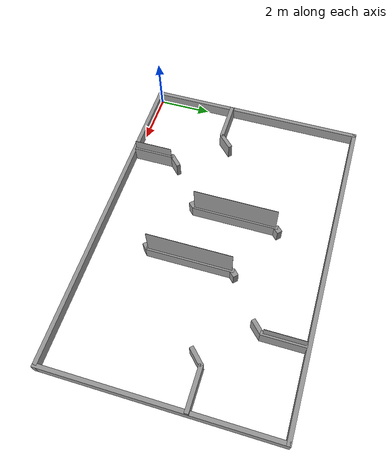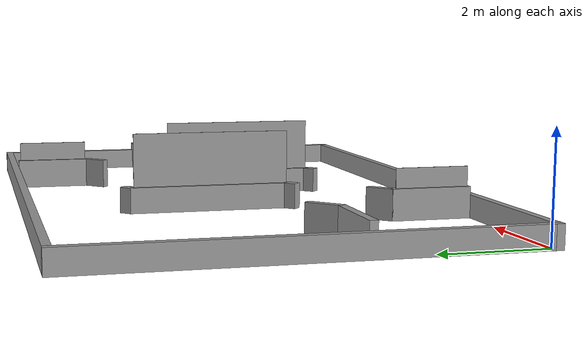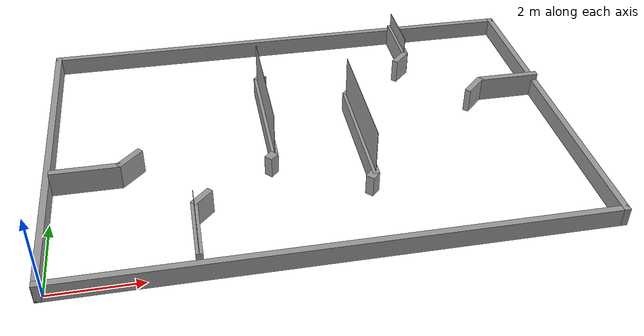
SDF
<?xml version='1.0'?>
<sdf version='1.7'>
  <model name='Robomaster_Arena'>
    <pose>5.925 4 0 0 -0 0</pose>
    <link name='Wall_0'>
      <collision name='Wall_0_Collision'>
        <geometry>
          <box>
            <size>12.1509 0.15 0.44</size>
          </box>
        </geometry>
        <pose>0 0 0.22 0 -0 0</pose>
      </collision>
      <visual name='Wall_0_Visual'>
        <pose>0 0 0.22 0 -0 0</pose>
        <geometry>
          <box>
            <size>12.1509 0.15 0.44</size>
          </box>
        </geometry>
        <material>
          <script>
            <uri>file://media/materials/scripts/gazebo.material</uri>
            <name>Gazebo/Grey</name>
          </script>
          <ambient>0 0 0 1</ambient>
        </material>
        <meta>
          <layer>0</layer>
        </meta>
      </visual>
      <pose>-0 -4.075 0 0 -0 0</pose>
    </link>
    <link name='Wall_12'>
      <collision name='Wall_12_Collision'>
        <geometry>
          <box>
            <size>1.546 0.15 0.6</size>
          </box>
        </geometry>
        <pose>0 0 0.3 0 -0 0</pose>
      </collision>
      <visual name='Wall_12_Visual'>
        <pose>0 0 0.3 0 -0 0</pose>
        <geometry>
          <box>
            <size>1.546 0.15 0.6</size>
          </box>
        </geometry>
        <material>
          <script>
            <uri>file://media/materials/scripts/gazebo.material</uri>
            <name>Gazebo/Grey</name>
          </script>
          <ambient>1 1 1 1</ambient>
        </material>
        <meta>
          <layer>0</layer>
        </meta>
      </visual>
      <pose>-2.878 -3.227 0 0 -0 1.5708</pose>
    </link>
    <link name='Wall_14'>
      <collision name='Wall_14_Collision'>
        <geometry>
          <box>
            <size>0.696242 0.15 0.6</size>
          </box>
        </geometry>
        <pose>0 0 0.3 0 -0 0</pose>
      </collision>
      <visual name='Wall_14_Visual'>
        <pose>0 0 0.3 0 -0 0</pose>
        <geometry>
          <box>
            <size>0.696242 0.15 0.6</size>
          </box>
        </geometry>
        <material>
          <script>
            <uri>file://media/materials/scripts/gazebo.material</uri>
            <name>Gazebo/Grey</name>
          </script>
          <ambient>1 1 1 1</ambient>
        </material>
        <meta>
          <layer>0</layer>
        </meta>
      </visual>
      <pose>-4.1855 -0.727 0 0 -0 0.784105</pose>
    </link>
    <link name='Wall_16'>
      <collision name='Wall_16_Collision'>
        <geometry>
          <box>
            <size>0.547 0.15 0.6</size>
          </box>
        </geometry>
        <pose>0 0 0.3 0 -0 0</pose>
      </collision>
      <visual name='Wall_16_Visual'>
        <pose>0 0 0.3 0 -0 0</pose>
        <geometry>
          <box>
            <size>0.547 0.15 0.6</size>
          </box>
        </geometry>
        <material>
          <script>
            <uri>file://media/materials/scripts/gazebo.material</uri>
            <name>Gazebo/Grey</name>
          </script>
          <ambient>1 1 1 1</ambient>
        </material>
        <meta>
          <layer>0</layer>
        </meta>
      </visual>
      <pose>-2.70728 -2.32076 0 0 -0 0.785398</pose>
    </link>
    <link name='Wall_18'>
      <collision name='Wall_18_Collision'>
        <geometry>
          <box>
            <size>1.425 0.01 0.978</size>
          </box>
        </geometry>
        <pose>0 0 0.489 0 -0 0</pose>
      </collision>
      <visual name='Wall_18_Visual'>
        <pose>0 0 0.489 0 -0 0</pose>
        <geometry>
          <box>
            <size>1.425 0.01 0.978</size>
          </box>
        </geometry>
        <material>
          <script>
            <uri>file://media/materials/scripts/gazebo.material</uri>
            <name>Gazebo/Grey</name>
          </script>
          <ambient>0 0 0 1</ambient>
        </material>
        <meta>
          <layer>0</layer>
        </meta>
      </visual>
      <pose>-2.87845 -3.25142 0 0 -0 1.5708</pose>
    </link>
    <link name='Wall_2'>
      <collision name='Wall_2_Collision'>
        <geometry>
          <box>
            <size>8.3 0.15 0.44</size>
          </box>
        </geometry>
        <pose>0 0 0.22 0 -0 0</pose>
      </collision>
      <visual name='Wall_2_Visual'>
        <pose>0 0 0.22 0 -0 0</pose>
        <geometry>
          <box>
            <size>8.3 0.15 0.44</size>
          </box>
        </geometry>
        <material>
          <script>
            <uri>file://media/materials/scripts/gazebo.material</uri>
            <name>Gazebo/Grey</name>
          </script>
          <ambient>0 0 0 1</ambient>
        </material>
        <meta>
          <layer>0</layer>
        </meta>
      </visual>
      <pose>-6 0 0 0 -0 1.5708</pose>
    </link>
    <link name='Wall_20'>
      <collision name='Wall_20_Collision'>
        <geometry>
          <box>
            <size>3.187 0.15 0.5</size>
          </box>
        </geometry>
        <pose>0 0 0.25 0 -0 0</pose>
      </collision>
      <visual name='Wall_20_Visual'>
        <pose>0 0 0.25 0 -0 0</pose>
        <geometry>
          <box>
            <size>3.187 0.15 0.5</size>
          </box>
        </geometry>
        <material>
          <script>
            <uri>file://media/materials/scripts/gazebo.material</uri>
            <name>Gazebo/Grey</name>
          </script>
          <ambient>1 1 1 1</ambient>
        </material>
        <meta>
          <layer>0</layer>
        </meta>
      </visual>
      <pose>-0.969001 0.5245 0 0 -0 1.5708</pose>
    </link>
    <link name='Wall_22'>
      <collision name='Wall_22_Collision'>
        <geometry>
          <box>
            <size>3.048 0.01 1.529</size>
          </box>
        </geometry>
        <pose>0 0 0.7645 0 -0 0</pose>
      </collision>
      <visual name='Wall_22_Visual'>
        <pose>0 0 0.7645 0 -0 0</pose>
        <geometry>
          <box>
            <size>3.048 0.01 1.529</size>
          </box>
        </geometry>
        <material>
          <script>
            <uri>file://media/materials/scripts/gazebo.material</uri>
            <name>Gazebo/Grey</name>
          </script>
          <ambient>0 0 0 1</ambient>
        </material>
        <meta>
          <layer>0</layer>
        </meta>
      </visual>
      <pose>-0.964 0.521 0 0 -0 -1.5708</pose>
    </link>
    <link name='Wall_24'>
      <collision name='Wall_24_Collision'>
        <geometry>
          <box>
            <size>3.187 0.15 0.5</size>
          </box>
        </geometry>
        <pose>0 0 0.25 0 -0 0</pose>
      </collision>
      <visual name='Wall_24_Visual'>
        <pose>0 0 0.25 0 -0 0</pose>
        <geometry>
          <box>
            <size>3.187 0.15 0.5</size>
          </box>
        </geometry>
        <material>
          <script>
            <uri>file://media/materials/scripts/gazebo.material</uri>
            <name>Gazebo/Grey</name>
          </script>
          <ambient>1 1 1 1</ambient>
        </material>
        <meta>
          <layer>0</layer>
        </meta>
      </visual>
      <pose>1.119 -0.5245 0 0 -0 -1.5708</pose>
    </link>
    <link name='Wall_26'>
      <collision name='Wall_26_Collision'>
        <geometry>
          <box>
            <size>3.048 0.01 1.529</size>
          </box>
        </geometry>
        <pose>0 0 0.7645 0 -0 0</pose>
      </collision>
      <visual name='Wall_26_Visual'>
        <pose>0 0 0.7645 0 -0 0</pose>
        <geometry>
          <box>
            <size>3.048 0.01 1.529</size>
          </box>
        </geometry>
        <material>
          <script>
            <uri>file://media/materials/scripts/gazebo.material</uri>
            <name>Gazebo/Grey</name>
          </script>
          <ambient>0 0 0 1</ambient>
        </material>
        <meta>
          <layer>0</layer>
        </meta>
      </visual>
      <pose>1.121 -0.522 0 0 -0 -1.5708</pose>
    </link>
    <link name='Wall_29'>
      <collision name='Wall_29_Collision'>
        <geometry>
          <box>
            <size>0.25 0.2 0.5</size>
          </box>
        </geometry>
        <pose>0 0 0.25 0 -0 0</pose>
      </collision>
      <visual name='Wall_29_Visual'>
        <pose>0 0 0.25 0 -0 0</pose>
        <geometry>
          <box>
            <size>0.25 0.2 0.5</size>
          </box>
        </geometry>
        <material>
          <script>
            <uri>file://media/materials/scripts/gazebo.material</uri>
            <name>Gazebo/Grey</name>
          </script>
          <ambient>1 1 1 1</ambient>
        </material>
        <meta>
          <layer>0</layer>
        </meta>
      </visual>
      <pose>-1.05411 -1.08735 0 0 -0 -2.35619</pose>
    </link>
    <link name='Wall_31'>
      <collision name='Wall_31_Collision'>
        <geometry>
          <box>
            <size>0.25 0.2 0.5</size>
          </box>
        </geometry>
        <pose>0 0 0.25 0 -0 0</pose>
      </collision>
      <visual name='Wall_31_Visual'>
        <pose>0 0 0.25 0 -0 0</pose>
        <geometry>
          <box>
            <size>0.25 0.2 0.5</size>
          </box>
        </geometry>
        <material>
          <script>
            <uri>file://media/materials/scripts/gazebo.material</uri>
            <name>Gazebo/Grey</name>
          </script>
          <ambient>1 1 1 1</ambient>
        </material>
        <meta>
          <layer>0</layer>
        </meta>
      </visual>
      <pose>-0.885541 2.1347 0 0 -0 0.785398</pose>
    </link>
    <link name='Wall_33'>
      <collision name='Wall_33_Collision'>
        <geometry>
          <box>
            <size>0.25 0.2 0.5</size>
          </box>
        </geometry>
        <pose>0 0 0.25 0 -0 0</pose>
      </collision>
      <visual name='Wall_33_Visual'>
        <pose>0 0 0.25 0 -0 0</pose>
        <geometry>
          <box>
            <size>0.25 0.2 0.5</size>
          </box>
        </geometry>
        <material>
          <script>
            <uri>file://media/materials/scripts/gazebo.material</uri>
            <name>Gazebo/Grey</name>
          </script>
          <ambient>1 1 1 1</ambient>
        </material>
        <meta>
          <layer>0</layer>
        </meta>
      </visual>
      <pose>1.20267 1.08644 0 0 -0 0.785398</pose>
    </link>
    <link name='Wall_35'>
      <collision name='Wall_35_Collision'>
        <geometry>
          <box>
            <size>0.25 0.2 0.5</size>
          </box>
        </geometry>
        <pose>0 0 0.25 0 -0 0</pose>
      </collision>
      <visual name='Wall_35_Visual'>
        <pose>0 0 0.25 0 -0 0</pose>
        <geometry>
          <box>
            <size>0.25 0.2 0.5</size>
          </box>
        </geometry>
        <material>
          <script>
            <uri>file://media/materials/scripts/gazebo.material</uri>
            <name>Gazebo/Grey</name>
          </script>
          <ambient>1 1 1 1</ambient>
        </material>
        <meta>
          <layer>0</layer>
        </meta>
      </visual>
      <pose>1.03487 -2.1358 0 0 -0 0.785398</pose>
    </link>
    <link name='Wall_37'>
      <collision name='Wall_37_Collision'>
        <geometry>
          <box>
            <size>1.546 0.15 0.6</size>
          </box>
        </geometry>
        <pose>0 0 0.3 0 -0 0</pose>
      </collision>
      <visual name='Wall_37_Visual'>
        <pose>0 0 0.3 0 -0 0</pose>
        <geometry>
          <box>
            <size>1.546 0.15 0.6</size>
          </box>
        </geometry>
        <material>
          <script>
            <uri>file://media/materials/scripts/gazebo.material</uri>
            <name>Gazebo/Grey</name>
          </script>
          <ambient>1 1 1 1</ambient>
        </material>
        <meta>
          <layer>0</layer>
        </meta>
      </visual>
      <pose>5.302 0.95 0 0 -0 3.14159</pose>
    </link>
    <link name='Wall_39'>
      <collision name='Wall_39_Collision'>
        <geometry>
          <box>
            <size>0.696594 0.15 0.6</size>
          </box>
        </geometry>
        <pose>0 0 0.3 0 -0 0</pose>
      </collision>
      <visual name='Wall_39_Visual'>
        <pose>0 0 0.3 0 -0 0</pose>
        <geometry>
          <box>
            <size>0.696594 0.15 0.6</size>
          </box>
        </geometry>
        <material>
          <script>
            <uri>file://media/materials/scripts/gazebo.material</uri>
            <name>Gazebo/Grey</name>
          </script>
          <ambient>1 1 1 1</ambient>
        </material>
        <meta>
          <layer>0</layer>
        </meta>
      </visual>
      <pose>4.3355 0.727 0 0 -0 -2.35749</pose>
    </link>
    <link name='Wall_41'>
      <collision name='Wall_41_Collision'>
        <geometry>
          <box>
            <size>1.546 0.15 0.6</size>
          </box>
        </geometry>
        <pose>0 0 0.3 0 -0 0</pose>
      </collision>
      <visual name='Wall_41_Visual'>
        <pose>0 0 0.3 0 -0 0</pose>
        <geometry>
          <box>
            <size>1.546 0.15 0.6</size>
          </box>
        </geometry>
        <material>
          <script>
            <uri>file://media/materials/scripts/gazebo.material</uri>
            <name>Gazebo/Grey</name>
          </script>
          <ambient>1 1 1 1</ambient>
        </material>
        <meta>
          <layer>0</layer>
        </meta>
      </visual>
      <pose>3.028 3.227 0 0 -0 -1.5708</pose>
    </link>
    <link name='Wall_43'>
      <collision name='Wall_43_Collision'>
        <geometry>
          <box>
            <size>0.547394 0.15 0.6</size>
          </box>
        </geometry>
        <pose>0 0 0.3 0 -0 0</pose>
      </collision>
      <visual name='Wall_43_Visual'>
        <pose>0 0 0.3 0 -0 0</pose>
        <geometry>
          <box>
            <size>0.547394 0.15 0.6</size>
          </box>
        </geometry>
        <material>
          <script>
            <uri>file://media/materials/scripts/gazebo.material</uri>
            <name>Gazebo/Grey</name>
          </script>
          <ambient>1 1 1 1</ambient>
        </material>
        <meta>
          <layer>0</layer>
        </meta>
      </visual>
      <pose>2.8575 2.3205 0 0 -0 -2.35619</pose>
    </link>
    <link name='Wall_45'>
      <collision name='Wall_45_Collision'>
        <geometry>
          <box>
            <size>1.425 0.01 0.978</size>
          </box>
        </geometry>
        <pose>0 0 0.489 0 -0 0</pose>
      </collision>
      <visual name='Wall_45_Visual'>
        <pose>0 0 0.489 0 -0 0</pose>
        <geometry>
          <box>
            <size>1.425 0.01 0.978</size>
          </box>
        </geometry>
        <material>
          <script>
            <uri>file://media/materials/scripts/gazebo.material</uri>
            <name>Gazebo/Grey</name>
          </script>
          <ambient>0 0 0 1</ambient>
        </material>
        <meta>
          <layer>0</layer>
        </meta>
      </visual>
      <pose>3.028 3.2515 0 0 -0 -1.5708</pose>
    </link>
    <link name='Wall_5'>
      <collision name='Wall_5_Collision'>
        <geometry>
          <box>
            <size>12.15 0.15 0.44</size>
          </box>
        </geometry>
        <pose>0 0 0.22 0 -0 0</pose>
      </collision>
      <visual name='Wall_5_Visual'>
        <pose>0 0 0.22 0 -0 0</pose>
        <geometry>
          <box>
            <size>12.15 0.15 0.44</size>
          </box>
        </geometry>
        <material>
          <script>
            <uri>file://media/materials/scripts/gazebo.material</uri>
            <name>Gazebo/Grey</name>
          </script>
          <ambient>0 0 0 1</ambient>
        </material>
        <meta>
          <layer>0</layer>
        </meta>
      </visual>
      <pose>-0 4.075 0 0 -0 0</pose>
    </link>
    <link name='Wall_6'>
      <collision name='Wall_6_Collision'>
        <geometry>
          <box>
            <size>8.30061 0.15 0.44</size>
          </box>
        </geometry>
        <pose>0 0 0.22 0 -0 0</pose>
      </collision>
      <visual name='Wall_6_Visual'>
        <pose>0 0 0.22 0 -0 0</pose>
        <geometry>
          <box>
            <size>8.30061 0.15 0.44</size>
          </box>
        </geometry>
        <material>
          <script>
            <uri>file://media/materials/scripts/gazebo.material</uri>
            <name>Gazebo/Grey</name>
          </script>
          <ambient>0 0 0 1</ambient>
        </material>
        <meta>
          <layer>0</layer>
        </meta>
      </visual>
      <pose>6 0 0 0 -0 -1.5708</pose>
    </link>
    <link name='Wall_8'>
      <collision name='Wall_8_Collision'>
        <geometry>
          <box>
            <size>1.546 0.15 0.6</size>
          </box>
        </geometry>
        <pose>0 0 0.3 0 -0 0</pose>
      </collision>
      <visual name='Wall_8_Visual'>
        <pose>0 0 0.3 0 -0 0</pose>
        <geometry>
          <box>
            <size>1.546 0.15 0.6</size>
          </box>
        </geometry>
        <material>
          <script>
            <uri>file://media/materials/scripts/gazebo.material</uri>
            <name>Gazebo/Grey</name>
          </script>
          <ambient>1 1 1 1</ambient>
        </material>
        <meta>
          <layer>0</layer>
        </meta>
      </visual>
      <pose>-5.152 -0.95 0 0 -0 0</pose>
    </link>
    <static>1</static>
  </model>
</sdf>
